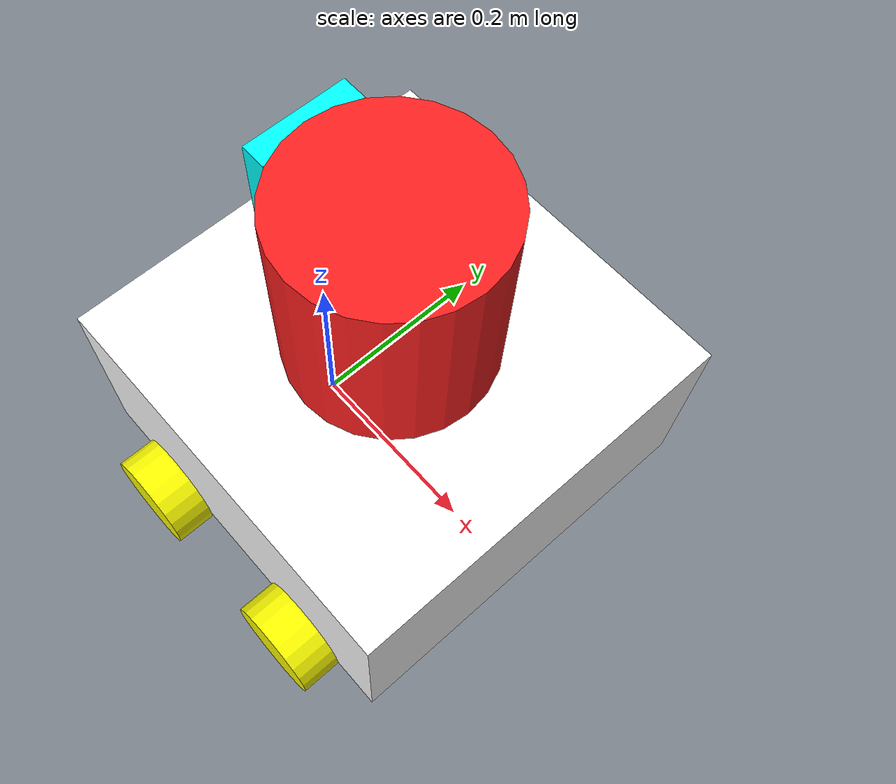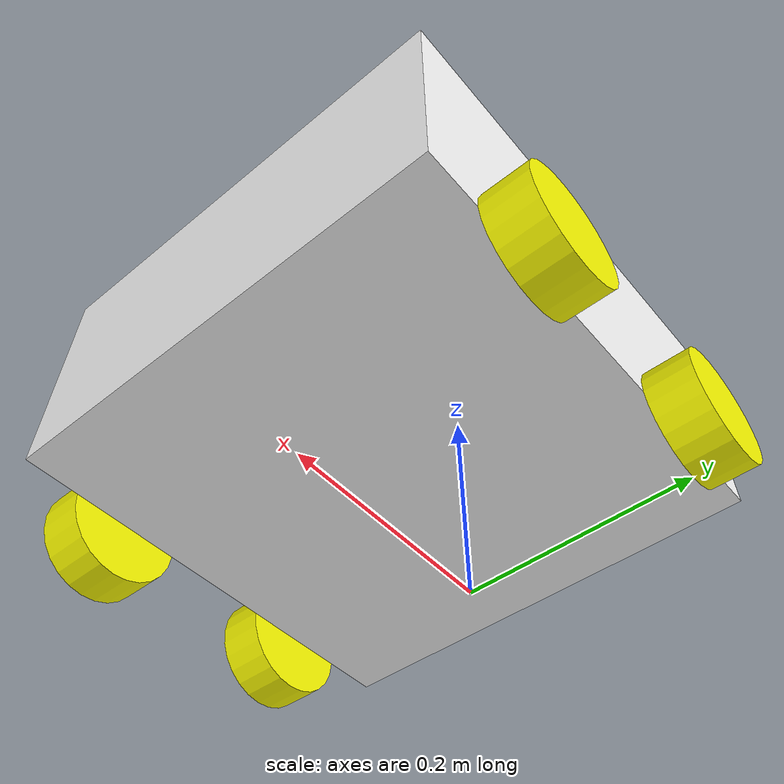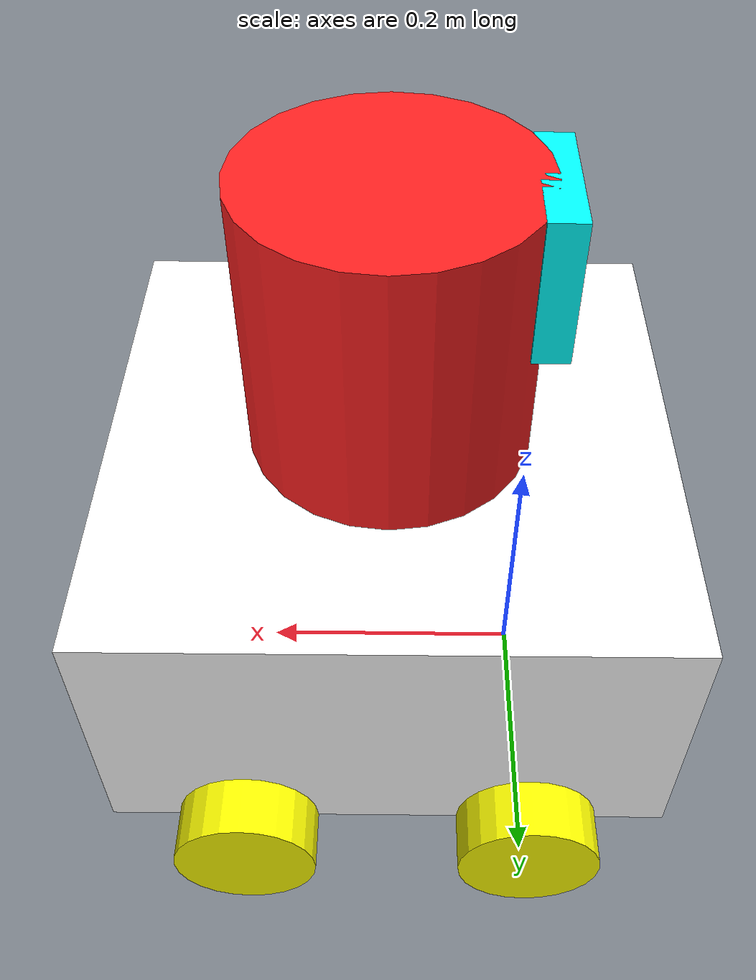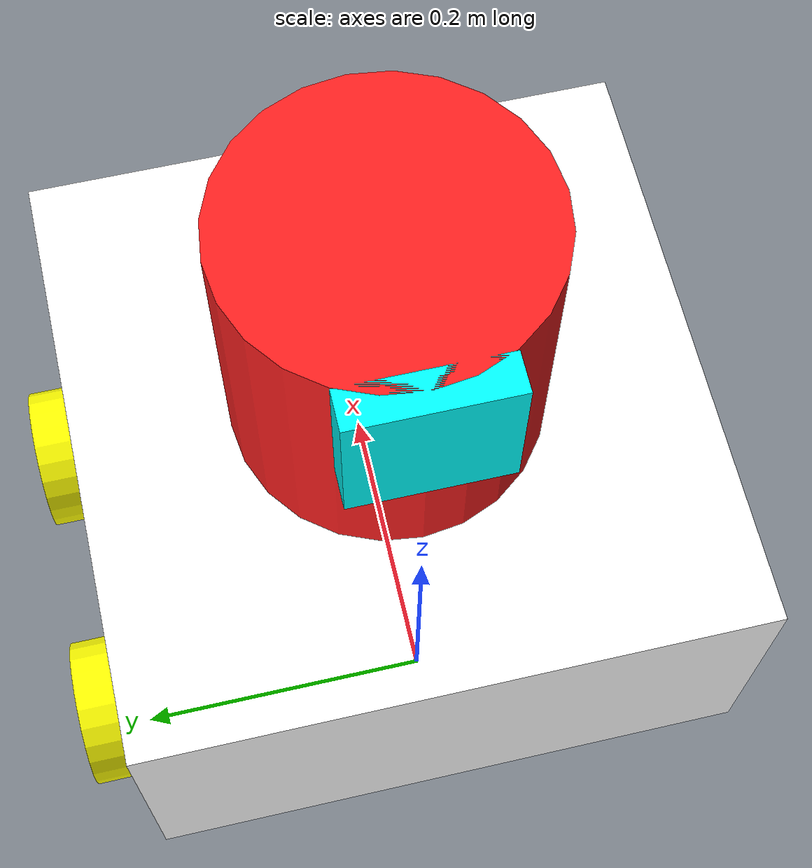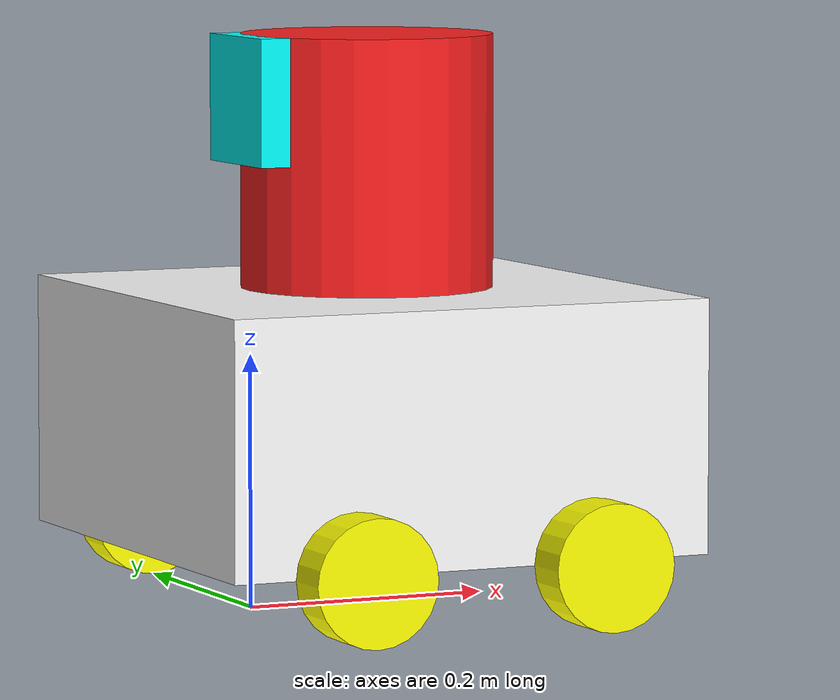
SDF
<sdf version='1.11'>
  <model name='robot'>
    <link name='base_link'>
      <inertial>
        <pose>0.094117647058823528 0 0.20000000000000001 0 0 0</pose>
        <mass>4.25</mass>
        <inertia>
          <ixx>0.087916666666666643</ixx>
          <ixy>0</ixy>
          <ixz>0.0049999999999999914</ixz>
          <iyy>0.090074295343137212</iyy>
          <iyz>0</iyz>
          <izz>0.087574295343137279</izz>
        </inertia>
      </inertial>
      <collision name='base_link_fixed_joint_lump__box_link_collision'>
        <pose>0.10000000000000001 0 0.14999999999999999 0 0 0</pose>
        <geometry>
          <box>
            <size>0.40000000000000002 0.40000000000000002 0.20000000000000001</size>
          </box>
        </geometry>
      </collision>
      <collision name='base_link_fixed_joint_lump__cylinder_link_collision_1'>
        <pose>0.10000000000000001 0 0.29999999999999999 0 0 0</pose>
        <geometry>
          <cylinder>
            <length>0.29999999999999999</length>
            <radius>0.10000000000000001</radius>
          </cylinder>
        </geometry>
      </collision>
      <collision name='base_link_fixed_joint_lump__camera_link_collision_2'>
        <pose>0 0 0.40000000000000002 0 0 0</pose>
        <geometry>
          <box>
            <size>0.025000000000000001 0.10000000000000001 0.10000000000000001</size>
          </box>
        </geometry>
        <surface>
          <contact>
            <ode/>
          </contact>
          <friction>
            <ode/>
          </friction>
        </surface>
      </collision>
      <visual name='base_link_fixed_joint_lump__box_link_visual'>
        <pose>0.10000000000000001 0 0.14999999999999999 0 0 0</pose>
        <geometry>
          <box>
            <size>0.40000000000000002 0.40000000000000002 0.20000000000000001</size>
          </box>
        </geometry>
        <material>
          <diffuse>1 1 1 1</diffuse>
          <ambient>1 1 1 1</ambient>
        </material>
      </visual>
      <visual name='base_link_fixed_joint_lump__cylinder_link_visual_1'>
        <pose>0.10000000000000001 0 0.29999999999999999 0 0 0</pose>
        <geometry>
          <cylinder>
            <length>0.29999999999999999</length>
            <radius>0.10000000000000001</radius>
          </cylinder>
        </geometry>
        <material>
          <diffuse>1 0.125 0.125 1</diffuse>
          <ambient>1 0.125 0.125 1</ambient>
        </material>
      </visual>
      <visual name='base_link_fixed_joint_lump__camera_link_visual_2'>
        <pose>0 0 0.40000000000000002 0 0 0</pose>
        <geometry>
          <box>
            <size>0.025000000000000001 0.10000000000000001 0.10000000000000001</size>
          </box>
        </geometry>
        <material>
          <diffuse>0 1 1 1</diffuse>
          <ambient>0 1 1 1</ambient>
        </material>
      </visual>
      <sensor name='thermal_camera_8bit' type='thermal'>
        <camera>
          <horizontal_fov>1.0469999999999999</horizontal_fov>
          <image>
            <width>320</width>
            <height>240</height>
            <format>L8</format>
          </image>
          <clip>
            <near>0.10000000000000001</near>
            <far>100</far>
          </clip>
        </camera>
        <always_on>true</always_on>
        <update_rate>30</update_rate>
        <visualize>true</visualize>
        <topic>thermal_camera_8bit/image</topic>
        <plugin name='gz::sim::systems::ThermalSensor' filename='gz-sim-thermal-sensor-system'>
          <min_temp>253.15</min_temp>
          <max_temp>673.15</max_temp>
          <resolution>3.0</resolution>
        </plugin>
        <pose>0.10000000000000001 0 0.40000000000000002 0 0 0</pose>
      </sensor>
    </link>
    <joint name='back_left_wheel_joint' type='revolute'>
      <pose relative_to='base_link'>0.20000000000000001 0.22 0.050000000000000003 -1.5707963267948959 0 0</pose>
      <parent>base_link</parent>
      <child>back_left_wheel_link</child>
      <axis>
        <xyz>0 0 -1</xyz>
        <limit>
          <lower>-inf</lower>
          <upper>inf</upper>
        </limit>
        <dynamics>
          <spring_reference>0</spring_reference>
          <spring_stiffness>0</spring_stiffness>
        </dynamics>
      </axis>
    </joint>
    <link name='back_left_wheel_link'>
      <pose relative_to='back_left_wheel_joint'>0 0 0 0 0 0</pose>
      <inertial>
        <pose>0 0 0 0 0 0</pose>
        <mass>0.10000000000000001</mass>
        <inertia>
          <ixx>7.5833333333333352e-05</ixx>
          <ixy>0</ixy>
          <ixz>0</ixz>
          <iyy>7.5833333333333352e-05</iyy>
          <iyz>0</iyz>
          <izz>0.000125</izz>
        </inertia>
      </inertial>
      <collision name='back_left_wheel_link_collision'>
        <pose>0 0 0 0 0 0</pose>
        <geometry>
          <cylinder>
            <length>0.040000000000000001</length>
            <radius>0.050000000000000003</radius>
          </cylinder>
        </geometry>
      </collision>
      <visual name='back_left_wheel_link_visual'>
        <pose>0 0 0 0 0 0</pose>
        <geometry>
          <cylinder>
            <length>0.040000000000000001</length>
            <radius>0.050000000000000003</radius>
          </cylinder>
        </geometry>
        <material>
          <diffuse>1 1 0 1</diffuse>
          <ambient>1 1 0 1</ambient>
        </material>
      </visual>
    </link>
    <joint name='back_right_wheel_joint' type='revolute'>
      <pose relative_to='base_link'>0.20000000000000001 -0.22 0.050000000000000003 -1.5707963267948959 0 0</pose>
      <parent>base_link</parent>
      <child>back_right_wheel_link</child>
      <axis>
        <xyz>0 0 -1</xyz>
        <limit>
          <lower>-inf</lower>
          <upper>inf</upper>
        </limit>
        <dynamics>
          <spring_reference>0</spring_reference>
          <spring_stiffness>0</spring_stiffness>
        </dynamics>
      </axis>
    </joint>
    <link name='back_right_wheel_link'>
      <pose relative_to='back_right_wheel_joint'>0 0 0 0 0 0</pose>
      <inertial>
        <pose>0 0 0 0 0 0</pose>
        <mass>0.10000000000000001</mass>
        <inertia>
          <ixx>7.5833333333333352e-05</ixx>
          <ixy>0</ixy>
          <ixz>0</ixz>
          <iyy>7.5833333333333352e-05</iyy>
          <iyz>0</iyz>
          <izz>0.000125</izz>
        </inertia>
      </inertial>
      <collision name='back_right_wheel_link_collision'>
        <pose>0 0 0 0 0 0</pose>
        <geometry>
          <cylinder>
            <length>0.040000000000000001</length>
            <radius>0.050000000000000003</radius>
          </cylinder>
        </geometry>
      </collision>
      <visual name='back_right_wheel_link_visual'>
        <pose>0 0 0 0 0 0</pose>
        <geometry>
          <cylinder>
            <length>0.040000000000000001</length>
            <radius>0.050000000000000003</radius>
          </cylinder>
        </geometry>
        <material>
          <diffuse>1 1 0 1</diffuse>
          <ambient>1 1 0 1</ambient>
        </material>
      </visual>
    </link>
    <joint name='front_left_wheel_joint' type='revolute'>
      <pose relative_to='base_link'>0 0.22 0.050000000000000003 -1.5707963267948959 0 0</pose>
      <parent>base_link</parent>
      <child>front_left_wheel_link</child>
      <axis>
        <xyz>0 0 -1</xyz>
        <limit>
          <lower>-inf</lower>
          <upper>inf</upper>
        </limit>
        <dynamics>
          <spring_reference>0</spring_reference>
          <spring_stiffness>0</spring_stiffness>
        </dynamics>
      </axis>
    </joint>
    <link name='front_left_wheel_link'>
      <pose relative_to='front_left_wheel_joint'>0 0 0 0 0 0</pose>
      <inertial>
        <pose>0 0 0 0 0 0</pose>
        <mass>0.10000000000000001</mass>
        <inertia>
          <ixx>7.5833333333333352e-05</ixx>
          <ixy>0</ixy>
          <ixz>0</ixz>
          <iyy>7.5833333333333352e-05</iyy>
          <iyz>0</iyz>
          <izz>0.000125</izz>
        </inertia>
      </inertial>
      <collision name='front_left_wheel_link_collision'>
        <pose>0 0 0 0 0 0</pose>
        <geometry>
          <cylinder>
            <length>0.040000000000000001</length>
            <radius>0.050000000000000003</radius>
          </cylinder>
        </geometry>
      </collision>
      <visual name='front_left_wheel_link_visual'>
        <pose>0 0 0 0 0 0</pose>
        <geometry>
          <cylinder>
            <length>0.040000000000000001</length>
            <radius>0.050000000000000003</radius>
          </cylinder>
        </geometry>
        <material>
          <diffuse>1 1 0 1</diffuse>
          <ambient>1 1 0 1</ambient>
        </material>
      </visual>
    </link>
    <joint name='front_right_wheel_joint' type='revolute'>
      <pose relative_to='base_link'>0 -0.22 0.050000000000000003 -1.5707963267948959 0 0</pose>
      <parent>base_link</parent>
      <child>front_right_wheel_link</child>
      <axis>
        <xyz>0 0 -1</xyz>
        <limit>
          <lower>-inf</lower>
          <upper>inf</upper>
        </limit>
        <dynamics>
          <spring_reference>0</spring_reference>
          <spring_stiffness>0</spring_stiffness>
        </dynamics>
      </axis>
    </joint>
    <link name='front_right_wheel_link'>
      <pose relative_to='front_right_wheel_joint'>0 0 0 0 0 0</pose>
      <inertial>
        <pose>0 0 0 0 0 0</pose>
        <mass>0.10000000000000001</mass>
        <inertia>
          <ixx>7.5833333333333352e-05</ixx>
          <ixy>0</ixy>
          <ixz>0</ixz>
          <iyy>7.5833333333333352e-05</iyy>
          <iyz>0</iyz>
          <izz>0.000125</izz>
        </inertia>
      </inertial>
      <collision name='front_right_wheel_link_collision'>
        <pose>0 0 0 0 0 0</pose>
        <geometry>
          <cylinder>
            <length>0.040000000000000001</length>
            <radius>0.050000000000000003</radius>
          </cylinder>
        </geometry>
      </collision>
      <visual name='front_right_wheel_link_visual'>
        <pose>0 0 0 0 0 0</pose>
        <geometry>
          <cylinder>
            <length>0.040000000000000001</length>
            <radius>0.050000000000000003</radius>
          </cylinder>
        </geometry>
        <material>
          <diffuse>1 1 0 1</diffuse>
          <ambient>1 1 0 1</ambient>
        </material>
      </visual>
    </link>
    <plugin name='gz::sim::systems::DiffDrive' filename='gz-sim-diff-drive-system'>
      <left_joint>front_left_wheel_joint</left_joint>
      <right_joint>front_right_wheel_joint</right_joint>
      <wheel_separation>0.4</wheel_separation>
      <wheel_radius>0.05</wheel_radius>
      <odom_publish_frequency>1</odom_publish_frequency>
      <topic>cmd_vel</topic>
    </plugin>
    <plugin name='gz::sim::systems::TriggeredPublisher' filename='gz-sim-triggered-publisher-system'>
      <input topic='/keyboard/keypress' type='gz.msgs.Int32'>
        <match field='data'>16777235</match>
      </input>
      <output topic='/cmd_vel' type='gz.msgs.Twist'>linear: {x: 1.0}, angular: {z: 0.0}</output>
    </plugin>
    <plugin name='gz::sim::systems::TriggeredPublisher' filename='gz-sim-triggered-publisher-system'>
      <input topic='/keyboard/keypress' type='gz.msgs.Int32'>
        <match field='data'>16777236</match>
      </input>
      <output topic='/cmd_vel' type='gz.msgs.Twist'>linear: {x: 0.0}, angular: {z: 3.0}</output>
    </plugin>
    <plugin name='gz::sim::systems::TriggeredPublisher' filename='gz-sim-triggered-publisher-system'>
      <input topic='/keyboard/keypress' type='gz.msgs.Int32'>
        <match field='data'>16777237</match>
      </input>
      <output topic='/cmd_vel' type='gz.msgs.Twist'>linear: {x: -1.0}, angular: {z: 0.0}</output>
    </plugin>
    <plugin name='gz::sim::systems::TriggeredPublisher' filename='gz-sim-triggered-publisher-system'>
      <input topic='/keyboard/keypress' type='gz.msgs.Int32'>
        <match field='data'>16777234</match>
      </input>
      <output topic='/cmd_vel' type='gz.msgs.Twist'>linear: {x: 0.0}, angular: {z: -3.0}</output>
    </plugin>
    <frame name='box_joint' attached_to='base_link'>
      <pose>0 0 0.050000000000000003 0 0 0</pose>
    </frame>
    <frame name='box_link' attached_to='box_joint'>
      <pose>0 0 0 0 0 0</pose>
    </frame>
    <frame name='camera_joint' attached_to='cylinder_link'>
      <pose>0 0 0.10000000000000001 0 0 0</pose>
    </frame>
    <frame name='camera_link' attached_to='camera_joint'>
      <pose>0 0 0 0 0 0</pose>
    </frame>
    <frame name='cylinder_joint' attached_to='base_link'>
      <pose>0.10000000000000001 0 0.29999999999999999 0 0 0</pose>
    </frame>
    <frame name='cylinder_link' attached_to='cylinder_joint'>
      <pose>0 0 0 0 0 0</pose>
    </frame>
  </model>
</sdf>
